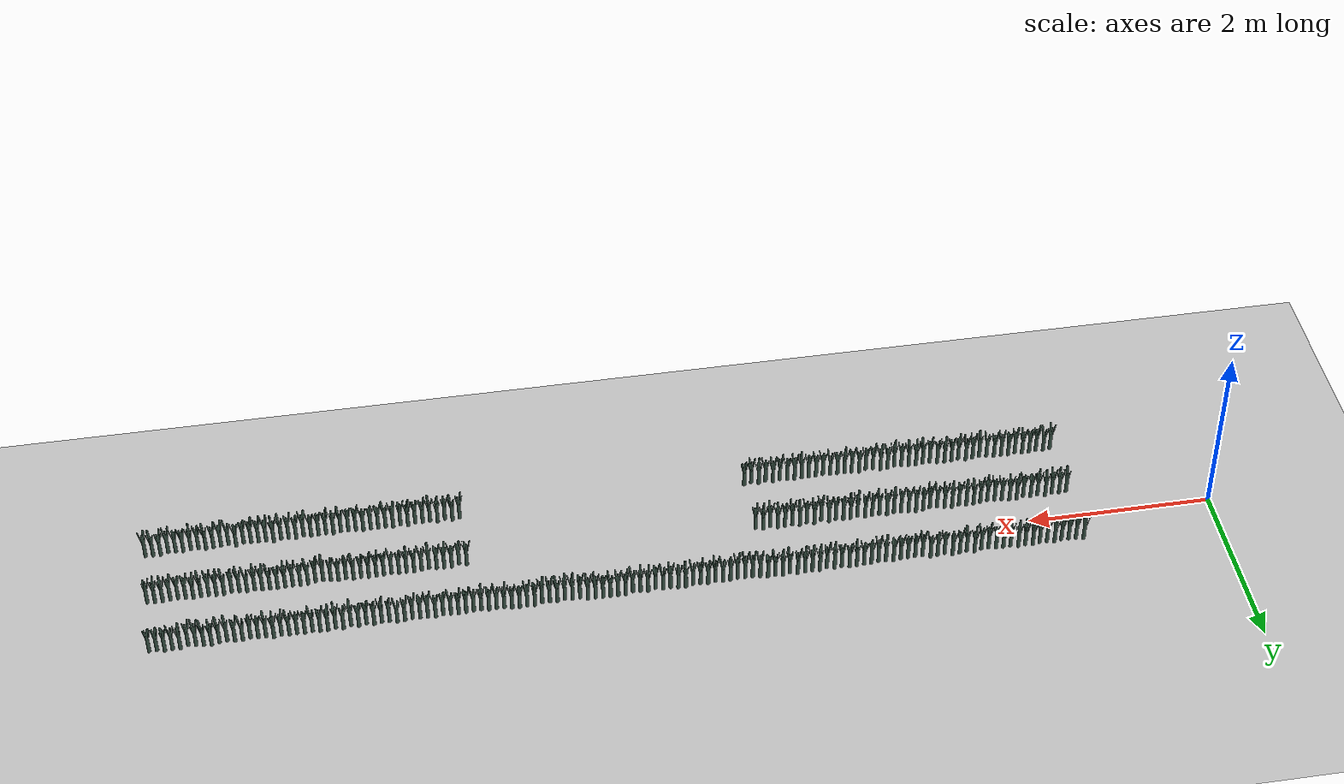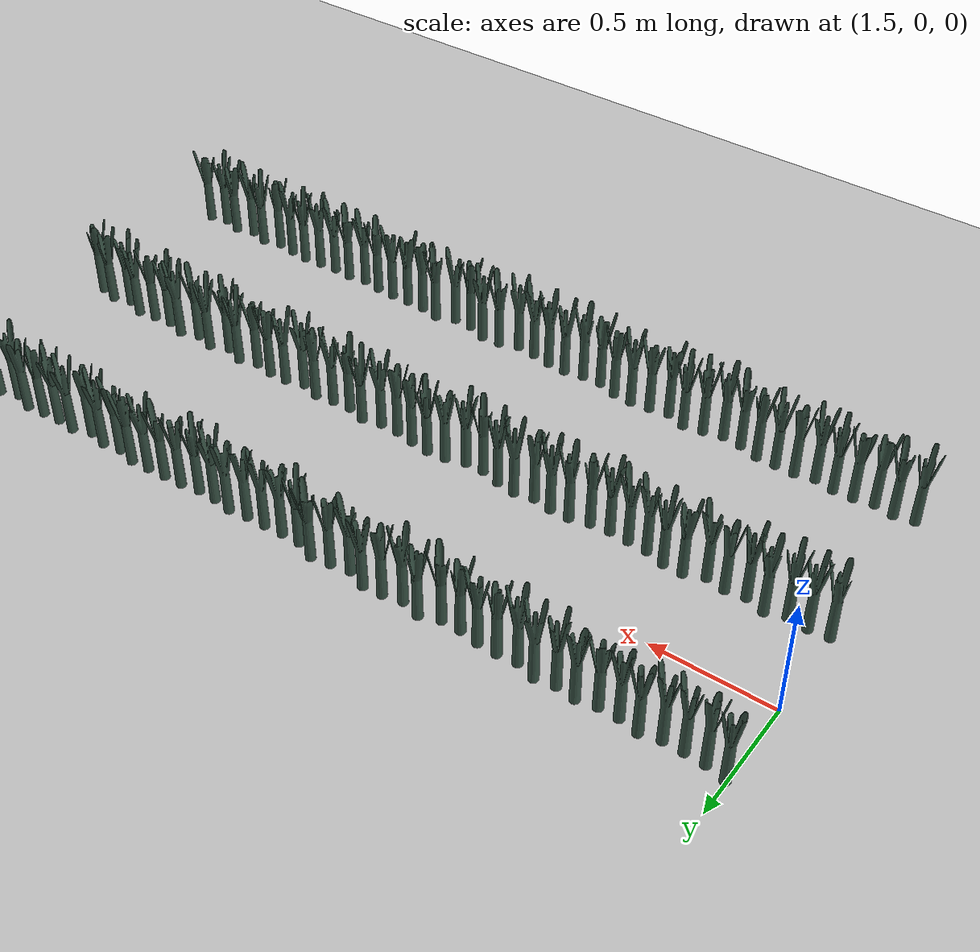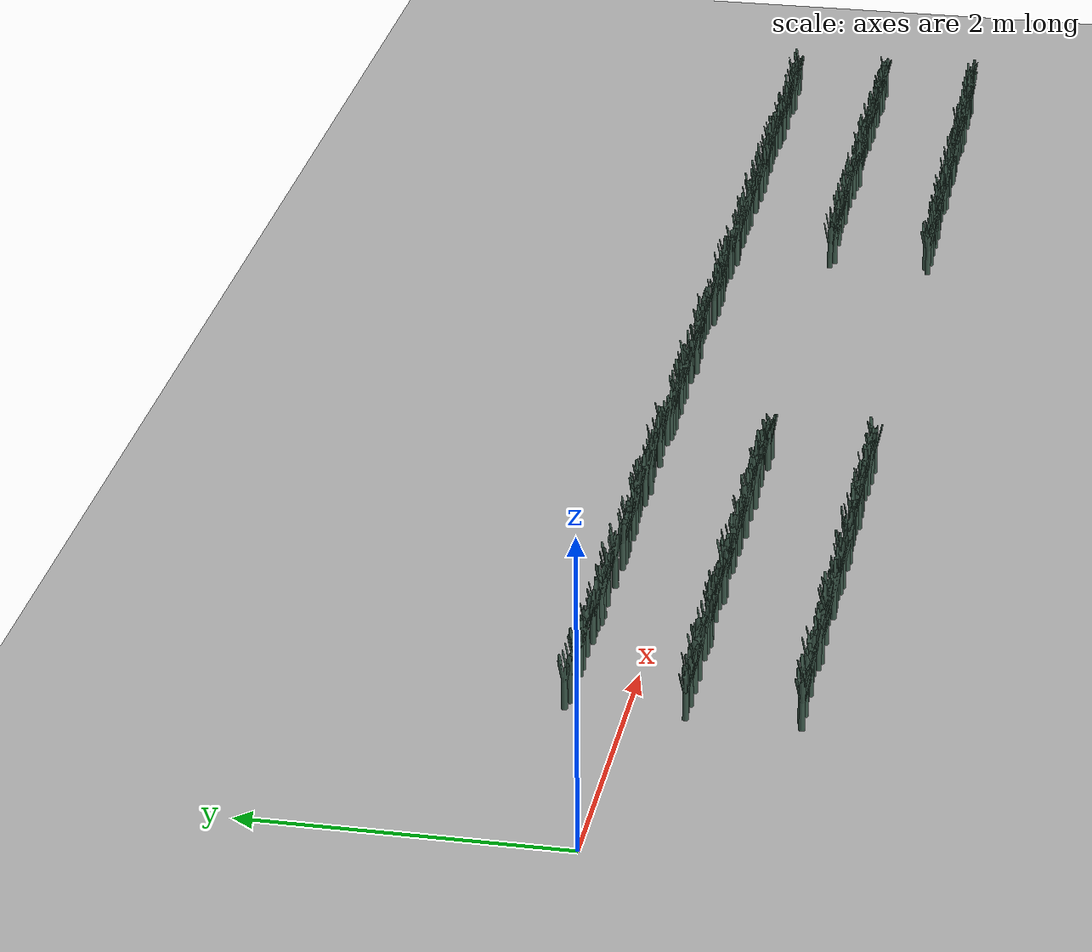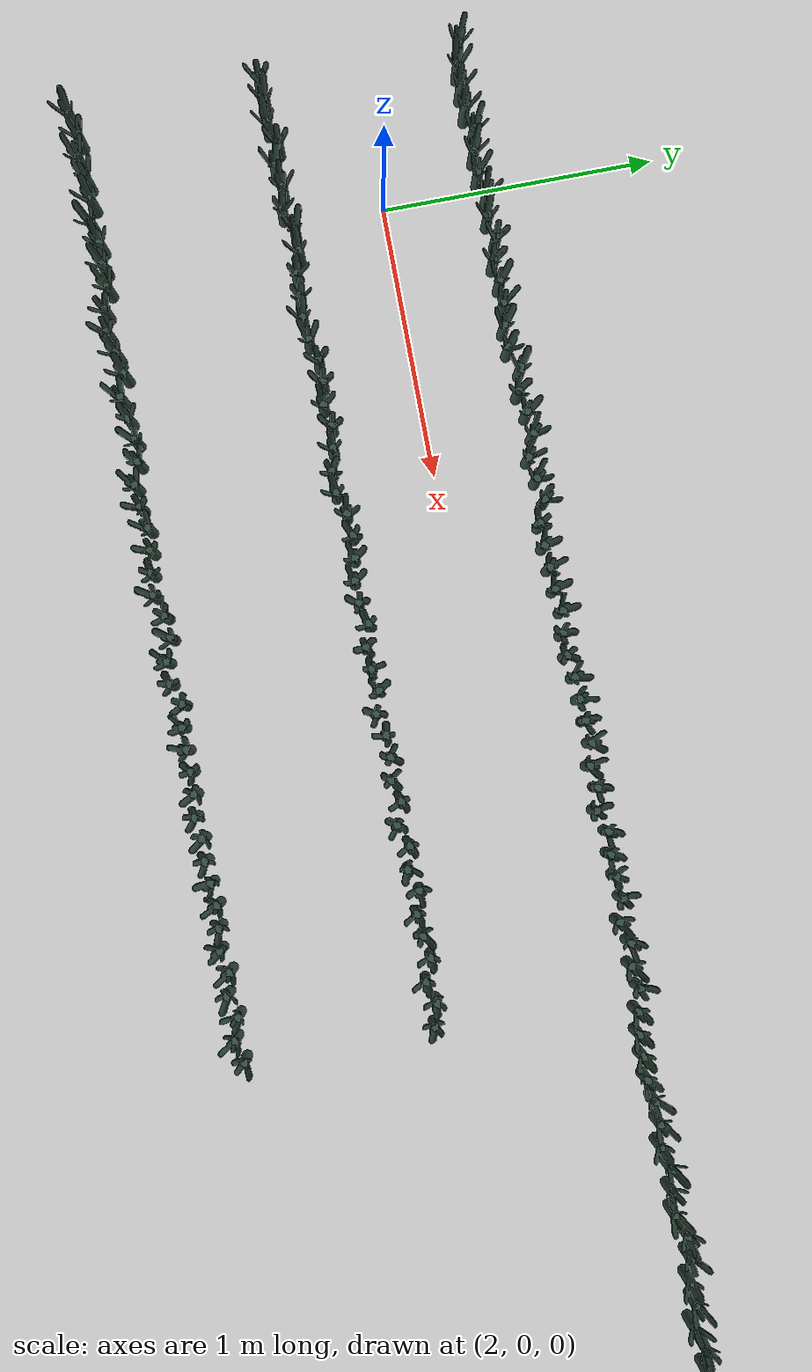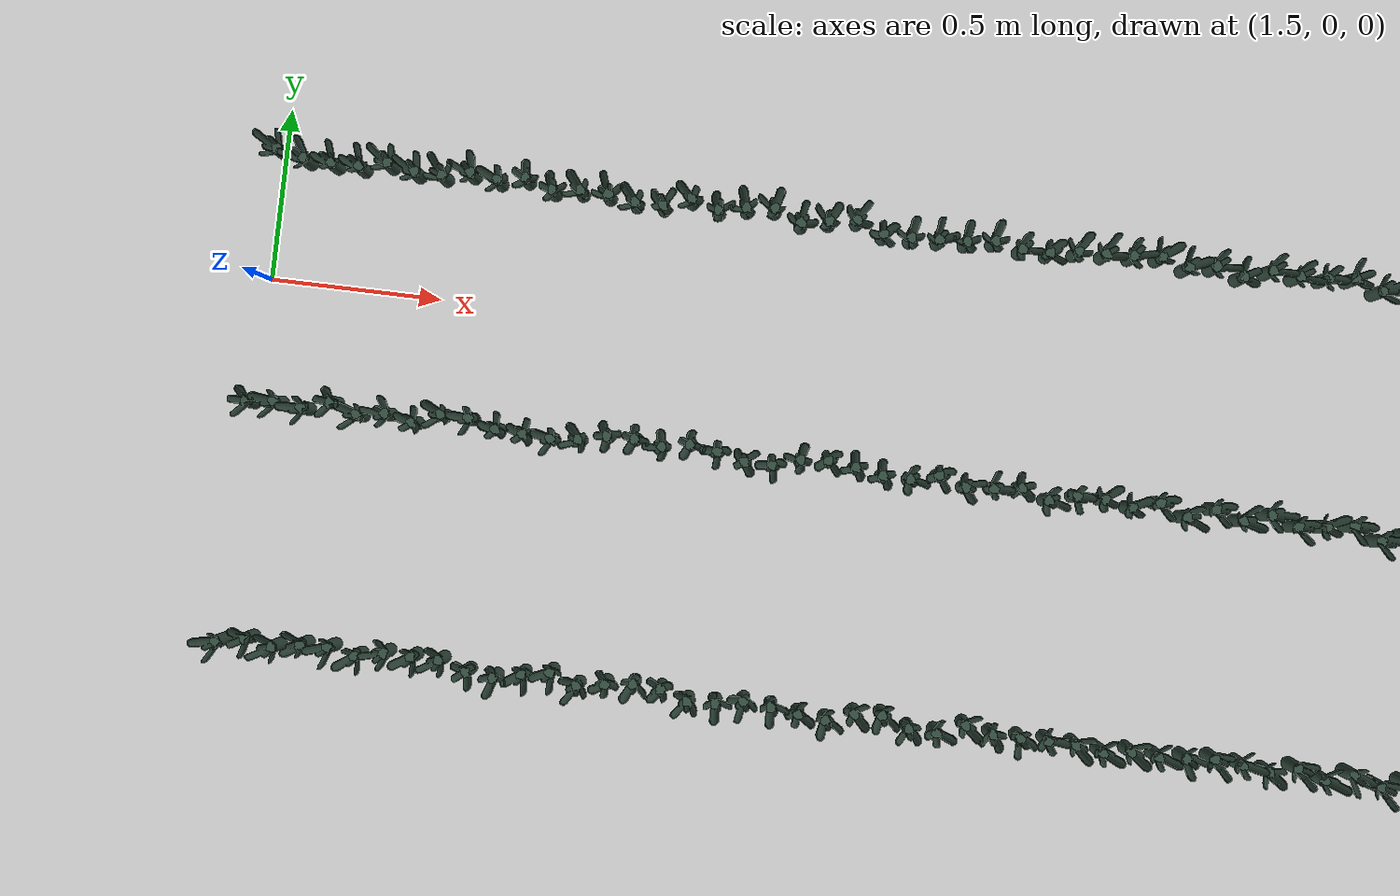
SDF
<sdf version="1.6">
 <world name="default">
  <light name="sun" type="directional">
   <pose>0 0 10 0 -0 0</pose>
   <diffuse>0.5 0.5 0.5 1</diffuse>
   <specular>0.1 0.1 0.1 1</specular>
   <attenuation>
    <range>1000</range>
    <constant>0.9</constant>
    <linear>0.01</linear>
    <quadratic>0.001</quadratic>
   </attenuation>
   <direction>0.9 0.5 -1</direction>
  </light>
  <scene><background>130 200 255 1</background><ambient>130 140 140 1</ambient></scene>
  <include><uri>model://dirt_plane</uri></include>
  <include><uri>model://Leek</uri><pose>1.500000 0.366860 0.15 0 0 151.737642</pose><static>0</static></include>
  <include><uri>model://Leek</uri><pose>1.580000 0.348081 0.15 0 0 -17.271624</pose><static>0</static></include>
  <include><uri>model://Leek</uri><pose>1.660000 0.345086 0.15 0 0 -44.230050</pose><static>0</static></include>
  <include><uri>model://Leek</uri><pose>1.740000 0.345083 0.15 0 0 -44.256999</pose><static>0</static></include>
  <include><uri>model://Leek</uri><pose>1.820000 0.364056 0.15 0 0 126.501568</pose><static>0</static></include>
  <include><uri>model://Leek</uri><pose>1.900000 0.348023 0.15 0 0 -17.794130</pose><static>0</static></include>
  <include><uri>model://Leek</uri><pose>1.980000 0.347952 0.15 0 0 -18.428122</pose><static>0</static></include>
  <include><uri>model://Leek</uri><pose>2.060000 0.364810 0.15 0 0 133.286129</pose><static>0</static></include>
  <include><uri>model://Leek</uri><pose>2.140000 0.353816 0.15 0 0 34.341924</pose><static>0</static></include>
  <include><uri>model://Leek</uri><pose>2.220000 0.368641 0.15 0 0 167.770606</pose><static>0</static></include>
  <include><uri>model://Leek</uri><pose>2.300000 0.344238 0.15 0 0 -51.853843</pose><static>0</static></include>
  <include><uri>model://Leek</uri><pose>2.380000 0.352342 0.15 0 0 21.081935</pose><static>0</static></include>
  <include><uri>model://Leek</uri><pose>2.460000 0.350720 0.15 0 0 6.483171</pose><static>0</static></include>
  <include>
   <uri>model://Leek</uri>
   <pose>2.540000 0.337695 0.15 0 0 -110.748633</pose>
   <static>0</static>
  </include>
  <include>
   <uri>model://Leek</uri>
   <pose>2.620000 0.338037 0.15 0 0 -107.671440</pose>
   <static>0</static>
  </include>
  <include><uri>model://Leek</uri><pose>2.700000 0.367038 0.15 0 0 153.345296</pose><static>0</static></include>
  <include><uri>model://Leek</uri><pose>2.780000 0.344256 0.15 0 0 -51.697083</pose><static>0</static></include>
  <include><uri>model://Leek</uri><pose>2.860000 0.359990 0.15 0 0 89.910733</pose><static>0</static></include>
  <include><uri>model://Leek</uri><pose>2.940000 0.367588 0.15 0 0 158.295861</pose><static>0</static></include>
  <include>
   <uri>model://Leek</uri>
   <pose>3.020000 0.336011 0.15 0 0 -125.904809</pose>
   <static>0</static>
  </include>
  <include><uri>model://Leek</uri><pose>3.100000 0.350109 0.15 0 0 0.977033</pose><static>0</static></include>
  <include><uri>model://Leek</uri><pose>3.180000 0.363888 0.15 0 0 124.992466</pose><static>0</static></include>
  <include>
   <uri>model://Leek</uri>
   <pose>3.260000 0.331543 0.15 0 0 -166.113670</pose>
   <static>0</static>
  </include>
  <include>
   <uri>model://Leek</uri>
   <pose>3.340000 0.331318 0.15 0 0 -168.139193</pose>
   <static>0</static>
  </include>
  <include>
   <uri>model://Leek</uri>
   <pose>3.420000 0.336043 0.15 0 0 -125.608859</pose>
   <static>0</static>
  </include>
  <include><uri>model://Leek</uri><pose>3.500000 0.339018 0.15 0 0 -98.839098</pose><static>0</static></include>
  <include><uri>model://Leek</uri><pose>3.580000 0.350868 0.15 0 0 7.810366</pose><static>0</static></include>
  <include>
   <uri>model://Leek</uri>
   <pose>3.660000 0.337219 0.15 0 0 -115.028678</pose>
   <static>0</static>
  </include>
  <include>
   <uri>model://Leek</uri>
   <pose>3.740000 0.336457 0.15 0 0 -121.889751</pose>
   <static>0</static>
  </include>
  <include><uri>model://Leek</uri><pose>3.820000 0.349434 0.15 0 0 -5.094323</pose><static>0</static></include>
  <include><uri>model://Leek</uri><pose>3.900000 0.352752 0.15 0 0 24.764004</pose><static>0</static></include>
  <include><uri>model://Leek</uri><pose>3.980000 0.357497 0.15 0 0 67.475456</pose><static>0</static></include>
  <include><uri>model://Leek</uri><pose>4.060000 0.363337 0.15 0 0 120.036382</pose><static>0</static></include>
  <include><uri>model://Leek</uri><pose>4.140000 0.343054 0.15 0 0 -62.513270</pose><static>0</static></include>
  <include><uri>model://Leek</uri><pose>4.220000 0.355376 0.15 0 0 48.387599</pose><static>0</static></include>
  <include>
   <uri>model://Leek</uri>
   <pose>4.300000 0.335568 0.15 0 0 -129.885776</pose>
   <static>0</static>
  </include>
  <include><uri>model://Leek</uri><pose>4.380000 0.363048 0.15 0 0 117.430127</pose><static>0</static></include>
  <include><uri>model://Leek</uri><pose>4.460000 0.355353 0.15 0 0 48.174700</pose><static>0</static></include>
  <include><uri>model://Leek</uri><pose>4.540000 0.360074 0.15 0 0 90.667205</pose><static>0</static></include>
  <include><uri>model://Leek</uri><pose>4.620000 0.369073 0.15 0 0 171.652568</pose><static>0</static></include>
  <include><uri>model://Leek</uri><pose>4.700000 0.342183 0.15 0 0 -70.350604</pose><static>0</static></include>
  <include><uri>model://Leek</uri><pose>4.780000 0.367251 0.15 0 0 155.257407</pose><static>0</static></include>
  <include><uri>model://Leek</uri><pose>4.860000 0.354774 0.15 0 0 42.965507</pose><static>0</static></include>
  <include><uri>model://Leek</uri><pose>4.940000 0.368336 0.15 0 0 165.020113</pose><static>0</static></include>
  <include><uri>model://Leek</uri><pose>5.020000 0.346927 0.15 0 0 -27.659769</pose><static>0</static></include>
  <include>
   <uri>model://Leek</uri>
   <pose>5.100000 0.335756 0.15 0 0 -128.198975</pose>
   <static>0</static>
  </include>
  <include>
   <uri>model://Leek</uri>
   <pose>5.180000 0.334334 0.15 0 0 -140.995395</pose>
   <static>0</static>
  </include>
  <include>
   <uri>model://Leek</uri>
   <pose>5.260000 0.332295 0.15 0 0 -159.347187</pose>
   <static>0</static>
  </include>
  <include><uri>model://Leek</uri><pose>5.340000 0.345948 0.15 0 0 -36.469030</pose><static>0</static></include>
  <include><uri>model://Leek</uri><pose>5.420000 0.348522 0.15 0 0 -13.300659</pose><static>0</static></include>
  <include>
   <uri>model://Leek</uri>
   <pose>5.500000 0.335713 0.15 0 0 -128.586408</pose>
   <static>0</static>
  </include>
  <include><uri>model://Leek</uri><pose>5.580000 0.356367 0.15 0 0 57.305866</pose><static>0</static></include>
  <include><uri>model://Leek</uri><pose>5.660000 0.345380 0.15 0 0 -41.583807</pose><static>0</static></include>
  <include>
   <uri>model://Leek</uri>
   <pose>5.740000 0.338747 0.15 0 0 -101.277227</pose>
   <static>0</static>
  </include>
  <include><uri>model://Leek</uri><pose>5.820000 0.369374 0.15 0 0 174.366676</pose><static>0</static></include>
  <include><uri>model://Leek</uri><pose>5.900000 0.364808 0.15 0 0 133.273447</pose><static>0</static></include>
  <include><uri>model://Leek</uri><pose>5.980000 0.346889 0.15 0 0 -27.997389</pose><static>0</static></include>
  <include><uri>model://Leek</uri><pose>6.060000 0.352007 0.15 0 0 18.065696</pose><static>0</static></include>
  <include>
   <uri>model://Leek</uri>
   <pose>6.140000 0.331332 0.15 0 0 -168.009673</pose>
   <static>0</static>
  </include>
  <include><uri>model://Leek</uri><pose>6.220000 0.358678 0.15 0 0 78.104845</pose><static>0</static></include>
  <include><uri>model://Leek</uri><pose>6.300000 0.346835 0.15 0 0 -28.486344</pose><static>0</static></include>
  <include><uri>model://Leek</uri><pose>6.380000 0.341528 0.15 0 0 -76.243877</pose><static>0</static></include>
  <include><uri>model://Leek</uri><pose>6.460000 0.368422 0.15 0 0 165.799376</pose><static>0</static></include>
  <include><uri>model://Leek</uri><pose>6.540000 0.369949 0.15 0 0 179.544901</pose><static>0</static></include>
  <include><uri>model://Leek</uri><pose>6.620000 0.369442 0.15 0 0 174.977318</pose><static>0</static></include>
  <include><uri>model://Leek</uri><pose>6.700000 0.368854 0.15 0 0 169.688577</pose><static>0</static></include>
  <include><uri>model://Leek</uri><pose>6.780000 0.365028 0.15 0 0 135.256165</pose><static>0</static></include>
  <include><uri>model://Leek</uri><pose>6.860000 0.367838 0.15 0 0 160.544832</pose><static>0</static></include>
  <include>
   <uri>model://Leek</uri>
   <pose>6.940000 0.336237 0.15 0 0 -123.869872</pose>
   <static>0</static>
  </include>
  <include><uri>model://Leek</uri><pose>7.020000 0.340714 0.15 0 0 -83.578359</pose><static>0</static></include>
  <include>
   <uri>model://Leek</uri>
   <pose>7.100000 0.331654 0.15 0 0 -165.110698</pose>
   <static>0</static>
  </include>
  <include><uri>model://Leek</uri><pose>7.180000 0.349183 0.15 0 0 -7.354023</pose><static>0</static></include>
  <include><uri>model://Leek</uri><pose>7.260000 0.340642 0.15 0 0 -84.224463</pose><static>0</static></include>
  <include>
   <uri>model://Leek</uri>
   <pose>7.340000 0.337914 0.15 0 0 -108.770737</pose>
   <static>0</static>
  </include>
  <include><uri>model://Leek</uri><pose>7.420000 0.367642 0.15 0 0 158.780539</pose><static>0</static></include>
  <include><uri>model://Leek</uri><pose>7.500000 0.358101 0.15 0 0 72.911843</pose><static>0</static></include>
  <include><uri>model://Leek</uri><pose>7.580000 0.366059 0.15 0 0 144.530559</pose><static>0</static></include>
  <include><uri>model://Leek</uri><pose>7.660000 0.363993 0.15 0 0 125.935448</pose><static>0</static></include>
  <include><uri>model://Leek</uri><pose>7.740000 0.345413 0.15 0 0 -41.282358</pose><static>0</static></include>
  <include><uri>model://Leek</uri><pose>7.820000 0.344337 0.15 0 0 -50.966517</pose><static>0</static></include>
  <include><uri>model://Leek</uri><pose>7.900000 0.354400 0.15 0 0 39.598221</pose><static>0</static></include>
  <include>
   <uri>model://Leek</uri>
   <pose>7.980000 0.332874 0.15 0 0 -154.138085</pose>
   <static>0</static>
  </include>
  <include>
   <uri>model://Leek</uri>
   <pose>8.060000 0.338765 0.15 0 0 -101.110663</pose>
   <static>0</static>
  </include>
  <include><uri>model://Leek</uri><pose>8.140000 0.345330 0.15 0 0 -42.033202</pose><static>0</static></include>
  <include><uri>model://Leek</uri><pose>8.220000 0.353775 0.15 0 0 33.978584</pose><static>0</static></include>
  <include><uri>model://Leek</uri><pose>8.300000 0.343638 0.15 0 0 -57.261448</pose><static>0</static></include>
  <include><uri>model://Leek</uri><pose>8.380000 0.339618 0.15 0 0 -93.440157</pose><static>0</static></include>
  <include><uri>model://Leek</uri><pose>8.460000 0.357716 0.15 0 0 69.440624</pose><static>0</static></include>
  <include><uri>model://Leek</uri><pose>8.540000 0.344845 0.15 0 0 -46.392160</pose><static>0</static></include>
  <include><uri>model://Leek</uri><pose>8.620000 0.344611 0.15 0 0 -48.501978</pose><static>0</static></include>
  <include><uri>model://Leek</uri><pose>8.700000 0.339077 0.15 0 0 -98.311410</pose><static>0</static></include>
  <include><uri>model://Leek</uri><pose>8.780000 0.357928 0.15 0 0 71.351810</pose><static>0</static></include>
  <include><uri>model://Leek</uri><pose>8.860000 0.367388 0.15 0 0 156.489300</pose><static>0</static></include>
  <include><uri>model://Leek</uri><pose>8.940000 0.340344 0.15 0 0 -86.903618</pose><static>0</static></include>
  <include><uri>model://Leek</uri><pose>9.020000 0.341405 0.15 0 0 -77.358572</pose><static>0</static></include>
  <include><uri>model://Leek</uri><pose>9.100000 0.355704 0.15 0 0 51.340076</pose><static>0</static></include>
  <include>
   <uri>model://Leek</uri>
   <pose>9.180000 0.332633 0.15 0 0 -156.298895</pose>
   <static>0</static>
  </include>
  <include><uri>model://Leek</uri><pose>9.260000 0.354980 0.15 0 0 44.819243</pose><static>0</static></include>
  <include>
   <uri>model://Leek</uri>
   <pose>9.340000 0.332387 0.15 0 0 -158.520985</pose>
   <static>0</static>
  </include>
  <include><uri>model://Leek</uri><pose>9.420000 0.363371 0.15 0 0 120.341555</pose><static>0</static></include>
  <include><uri>model://Leek</uri><pose>9.500000 0.341292 0.15 0 0 -78.371844</pose><static>0</static></include>
  <include><uri>model://Leek</uri><pose>9.580000 0.360265 0.15 0 0 92.386500</pose><static>0</static></include>
  <include><uri>model://Leek</uri><pose>9.660000 0.359316 0.15 0 0 83.848009</pose><static>0</static></include>
  <include><uri>model://Leek</uri><pose>9.740000 0.346426 0.15 0 0 -32.162506</pose><static>0</static></include>
  <include><uri>model://Leek</uri><pose>9.820000 0.359800 0.15 0 0 88.197189</pose><static>0</static></include>
  <include><uri>model://Leek</uri><pose>9.900000 0.354190 0.15 0 0 37.705734</pose><static>0</static></include>
  <include><uri>model://Leek</uri><pose>9.980000 0.358988 0.15 0 0 80.893680</pose><static>0</static></include>
  <include><uri>model://Leek</uri><pose>10.060000 0.350299 0.15 0 0 2.692798</pose><static>0</static></include>
  <include>
   <uri>model://Leek</uri>
   <pose>10.140000 0.369893 0.15 0 0 179.036834</pose>
   <static>0</static>
  </include>
  <include>
   <uri>model://Leek</uri>
   <pose>10.220000 0.343582 0.15 0 0 -57.760885</pose>
   <static>0</static>
  </include>
  <include>
   <uri>model://Leek</uri>
   <pose>10.300000 0.345125 0.15 0 0 -43.875474</pose>
   <static>0</static>
  </include>
  <include>
   <uri>model://Leek</uri>
   <pose>10.380000 0.334114 0.15 0 0 -142.972622</pose>
   <static>0</static>
  </include>
  <include><uri>model://Leek</uri><pose>10.460000 0.353426 0.15 0 0 30.831188</pose><static>0</static></include>
  <include><uri>model://Leek</uri><pose>10.540000 0.354443 0.15 0 0 39.990473</pose><static>0</static></include>
  <include>
   <uri>model://Leek</uri>
   <pose>10.620000 0.337295 0.15 0 0 -114.345129</pose>
   <static>0</static>
  </include>
  <include><uri>model://Leek</uri><pose>10.700000 0.349178 0.15 0 0 -7.397134</pose><static>0</static></include>
  <include>
   <uri>model://Leek</uri>
   <pose>10.780000 0.367831 0.15 0 0 160.482044</pose>
   <static>0</static>
  </include>
  <include><uri>model://Leek</uri><pose>10.860000 0.361071 0.15 0 0 99.642166</pose><static>0</static></include>
  <include>
   <uri>model://Leek</uri>
   <pose>10.940000 0.341341 0.15 0 0 -77.931826</pose>
   <static>0</static>
  </include>
  <include>
   <uri>model://Leek</uri>
   <pose>11.020000 0.331420 0.15 0 0 -167.217459</pose>
   <static>0</static>
  </include>
  <include>
   <uri>model://Leek</uri>
   <pose>11.100000 0.369360 0.15 0 0 174.241016</pose>
   <static>0</static>
  </include>
  <include>
   <uri>model://Leek</uri>
   <pose>11.180000 0.363223 0.15 0 0 119.010629</pose>
   <static>0</static>
  </include>
  <include>
   <uri>model://Leek</uri>
   <pose>11.260000 0.369751 0.15 0 0 177.755497</pose>
   <static>0</static>
  </include>
  <include><uri>model://Leek</uri><pose>11.340000 0.352202 0.15 0 0 19.818176</pose><static>0</static></include>
  <include><uri>model://Leek</uri><pose>11.420000 0.352888 0.15 0 0 25.994413</pose><static>0</static></include>
  <include>
   <uri>model://Leek</uri>
   <pose>1.500000 -0.362743 0.15 0 0 -114.685333</pose>
   <static>0</static>
  </include>
  <include>
   <uri>model://Leek</uri>
   <pose>1.580000 -0.355255 0.15 0 0 -47.294471</pose>
   <static>0</static>
  </include>
  <include>
   <uri>model://Leek</uri>
   <pose>1.660000 -0.363604 0.15 0 0 -122.433005</pose>
   <static>0</static>
  </include>
  <include>
   <uri>model://Leek</uri>
   <pose>1.740000 -0.337623 0.15 0 0 111.396633</pose>
   <static>0</static>
  </include>
  <include>
   <uri>model://Leek</uri>
   <pose>1.820000 -0.363666 0.15 0 0 -122.996905</pose>
   <static>0</static>
  </include>
  <include>
   <uri>model://Leek</uri>
   <pose>1.900000 -0.351232 0.15 0 0 -11.089569</pose>
   <static>0</static>
  </include>
  <include>
   <uri>model://Leek</uri>
   <pose>1.980000 -0.366814 0.15 0 0 -151.322602</pose>
   <static>0</static>
  </include>
  <include>
   <uri>model://Leek</uri>
   <pose>2.060000 -0.335063 0.15 0 0 134.435576</pose>
   <static>0</static>
  </include>
  <include>
   <uri>model://Leek</uri>
   <pose>2.140000 -0.335691 0.15 0 0 128.777577</pose>
   <static>0</static>
  </include>
  <include>
   <uri>model://Leek</uri>
   <pose>2.220000 -0.357719 0.15 0 0 -69.471807</pose>
   <static>0</static>
  </include>
  <include>
   <uri>model://Leek</uri>
   <pose>2.300000 -0.361931 0.15 0 0 -107.379122</pose>
   <static>0</static>
  </include>
  <include>
   <uri>model://Leek</uri>
   <pose>2.380000 -0.365736 0.15 0 0 -141.624992</pose>
   <static>0</static>
  </include>
  <include>
   <uri>model://Leek</uri>
   <pose>2.460000 -0.358848 0.15 0 0 -79.633446</pose>
   <static>0</static>
  </include>
  <include>
   <uri>model://Leek</uri>
   <pose>2.540000 -0.338291 0.15 0 0 105.385114</pose>
   <static>0</static>
  </include>
  <include>
   <uri>model://Leek</uri>
   <pose>2.620000 -0.336936 0.15 0 0 117.572283</pose>
   <static>0</static>
  </include>
  <include><uri>model://Leek</uri><pose>2.700000 -0.350518 0.15 0 0 -4.662376</pose><static>0</static></include>
  <include>
   <uri>model://Leek</uri>
   <pose>2.780000 -0.333453 0.15 0 0 148.921029</pose>
   <static>0</static>
  </include>
  <include><uri>model://Leek</uri><pose>2.860000 -0.344764 0.15 0 0 47.126781</pose><static>0</static></include>
  <include>
   <uri>model://Leek</uri>
   <pose>2.940000 -0.364068 0.15 0 0 -126.616009</pose>
   <static>0</static>
  </include>
  <include>
   <uri>model://Leek</uri>
   <pose>3.020000 -0.364297 0.15 0 0 -128.676261</pose>
   <static>0</static>
  </include>
  <include><uri>model://Leek</uri><pose>3.100000 -0.339372 0.15 0 0 95.651679</pose><static>0</static></include>
  <include>
   <uri>model://Leek</uri>
   <pose>3.180000 -0.332131 0.15 0 0 160.824005</pose>
   <static>0</static>
  </include>
  <include><uri>model://Leek</uri><pose>3.260000 -0.341415 0.15 0 0 77.266854</pose><static>0</static></include>
  <include>
   <uri>model://Leek</uri>
   <pose>3.340000 -0.356076 0.15 0 0 -54.686237</pose>
   <static>0</static>
  </include>
  <include>
   <uri>model://Leek</uri>
   <pose>3.420000 -0.356494 0.15 0 0 -58.449199</pose>
   <static>0</static>
  </include>
  <include>
   <uri>model://Leek</uri>
   <pose>3.500000 -0.336346 0.15 0 0 122.888546</pose>
   <static>0</static>
  </include>
  <include>
   <uri>model://Leek</uri>
   <pose>3.580000 -0.359912 0.15 0 0 -89.206994</pose>
   <static>0</static>
  </include>
  <include>
   <uri>model://Leek</uri>
   <pose>3.660000 -0.354888 0.15 0 0 -43.993693</pose>
   <static>0</static>
  </include>
  <include><uri>model://Leek</uri><pose>3.740000 -0.343488 0.15 0 0 58.603961</pose><static>0</static></include>
  <include>
   <uri>model://Leek</uri>
   <pose>3.820000 -0.368374 0.15 0 0 -165.368591</pose>
   <static>0</static>
  </include>
  <include><uri>model://Leek</uri><pose>3.900000 -0.347573 0.15 0 0 21.842639</pose><static>0</static></include>
  <include><uri>model://Leek</uri><pose>3.980000 -0.346402 0.15 0 0 32.381603</pose><static>0</static></include>
  <include>
   <uri>model://Leek</uri>
   <pose>4.060000 -0.360399 0.15 0 0 -93.593467</pose>
   <static>0</static>
  </include>
  <include>
   <uri>model://Leek</uri>
   <pose>4.140000 -0.337749 0.15 0 0 110.259974</pose>
   <static>0</static>
  </include>
  <include>
   <uri>model://Leek</uri>
   <pose>4.220000 -0.368410 0.15 0 0 -165.685668</pose>
   <static>0</static>
  </include>
  <include>
   <uri>model://Leek</uri>
   <pose>4.300000 -0.337051 0.15 0 0 116.536968</pose>
   <static>0</static>
  </include>
  <include>
   <uri>model://Leek</uri>
   <pose>4.380000 -0.359823 0.15 0 0 -88.408312</pose>
   <static>0</static>
  </include>
  <include>
   <uri>model://Leek</uri>
   <pose>4.460000 -0.333420 0.15 0 0 149.221941</pose>
   <static>0</static>
  </include>
  <include>
   <uri>model://Leek</uri>
   <pose>4.540000 -0.357304 0.15 0 0 -65.738738</pose>
   <static>0</static>
  </include>
  <include><uri>model://Leek</uri><pose>4.620000 -0.349909 0.15 0 0 0.815392</pose><static>0</static></include>
  <include>
   <uri>model://Leek</uri>
   <pose>4.700000 -0.337788 0.15 0 0 109.909283</pose>
   <static>0</static>
  </include>
  <include>
   <uri>model://Leek</uri>
   <pose>4.780000 -0.369896 0.15 0 0 -179.065457</pose>
   <static>0</static>
  </include>
  <include><uri>model://Leek</uri><pose>4.860000 -0.346200 0.15 0 0 34.199408</pose><static>0</static></include>
  <include>
   <uri>model://Leek</uri>
   <pose>4.940000 -0.368577 0.15 0 0 -167.194638</pose>
   <static>0</static>
  </include>
  <include><uri>model://Leek</uri><pose>8.060000 -0.344220 0.15 0 0 52.016438</pose><static>0</static></include>
  <include>
   <uri>model://Leek</uri>
   <pose>8.140000 -0.369431 0.15 0 0 -174.881421</pose>
   <static>0</static>
  </include>
  <include>
   <uri>model://Leek</uri>
   <pose>8.220000 -0.336758 0.15 0 0 119.177691</pose>
   <static>0</static>
  </include>
  <include><uri>model://Leek</uri><pose>8.300000 -0.339228 0.15 0 0 96.952141</pose><static>0</static></include>
  <include><uri>model://Leek</uri><pose>8.380000 -0.340008 0.15 0 0 89.927639</pose><static>0</static></include>
  <include>
   <uri>model://Leek</uri>
   <pose>8.460000 -0.355043 0.15 0 0 -45.388257</pose>
   <static>0</static>
  </include>
  <include><uri>model://Leek</uri><pose>8.540000 -0.343079 0.15 0 0 62.286426</pose><static>0</static></include>
  <include>
   <uri>model://Leek</uri>
   <pose>8.620000 -0.334572 0.15 0 0 138.852934</pose>
   <static>0</static>
  </include>
  <include><uri>model://Leek</uri><pose>8.700000 -0.342688 0.15 0 0 65.810077</pose><static>0</static></include>
  <include>
   <uri>model://Leek</uri>
   <pose>8.780000 -0.336628 0.15 0 0 120.350402</pose>
   <static>0</static>
  </include>
  <include>
   <uri>model://Leek</uri>
   <pose>8.860000 -0.352166 0.15 0 0 -19.492217</pose>
   <static>0</static>
  </include>
  <include><uri>model://Leek</uri><pose>8.940000 -0.342253 0.15 0 0 69.722733</pose><static>0</static></include>
  <include>
   <uri>model://Leek</uri>
   <pose>9.020000 -0.337853 0.15 0 0 109.326174</pose>
   <static>0</static>
  </include>
  <include>
   <uri>model://Leek</uri>
   <pose>9.100000 -0.330875 0.15 0 0 172.127924</pose>
   <static>0</static>
  </include>
  <include><uri>model://Leek</uri><pose>9.180000 -0.343624 0.15 0 0 57.387090</pose><static>0</static></include>
  <include>
   <uri>model://Leek</uri>
   <pose>9.260000 -0.334069 0.15 0 0 143.376402</pose>
   <static>0</static>
  </include>
  <include>
   <uri>model://Leek</uri>
   <pose>9.340000 -0.351915 0.15 0 0 -17.236049</pose>
   <static>0</static>
  </include>
  <include>
   <uri>model://Leek</uri>
   <pose>9.420000 -0.338832 0.15 0 0 100.512856</pose>
   <static>0</static>
  </include>
  <include>
   <uri>model://Leek</uri>
   <pose>9.500000 -0.351988 0.15 0 0 -17.888106</pose>
   <static>0</static>
  </include>
  <include>
   <uri>model://Leek</uri>
   <pose>9.580000 -0.366915 0.15 0 0 -152.235533</pose>
   <static>0</static>
  </include>
  <include>
   <uri>model://Leek</uri>
   <pose>9.660000 -0.360191 0.15 0 0 -91.717054</pose>
   <static>0</static>
  </include>
  <include><uri>model://Leek</uri><pose>9.740000 -0.338937 0.15 0 0 99.567432</pose><static>0</static></include>
  <include>
   <uri>model://Leek</uri>
   <pose>9.820000 -0.337408 0.15 0 0 113.330827</pose>
   <static>0</static>
  </include>
  <include><uri>model://Leek</uri><pose>9.900000 -0.341894 0.15 0 0 72.949869</pose><static>0</static></include>
  <include><uri>model://Leek</uri><pose>9.980000 -0.339175 0.15 0 0 97.429370</pose><static>0</static></include>
  <include>
   <uri>model://Leek</uri>
   <pose>10.060000 -0.331069 0.15 0 0 170.378378</pose>
   <static>0</static>
  </include>
  <include>
   <uri>model://Leek</uri>
   <pose>10.140000 -0.334028 0.15 0 0 143.746498</pose>
   <static>0</static>
  </include>
  <include>
   <uri>model://Leek</uri>
   <pose>10.220000 -0.335559 0.15 0 0 129.969029</pose>
   <static>0</static>
  </include>
  <include><uri>model://Leek</uri><pose>10.300000 -0.349650 0.15 0 0 3.147278</pose><static>0</static></include>
  <include>
   <uri>model://Leek</uri>
   <pose>10.380000 -0.335401 0.15 0 0 131.392682</pose>
   <static>0</static>
  </include>
  <include><uri>model://Leek</uri><pose>10.460000 -0.349411 0.15 0 0 5.302386</pose><static>0</static></include>
  <include>
   <uri>model://Leek</uri>
   <pose>10.540000 -0.356149 0.15 0 0 -55.344566</pose>
   <static>0</static>
  </include>
  <include>
   <uri>model://Leek</uri>
   <pose>10.620000 -0.334067 0.15 0 0 143.396150</pose>
   <static>0</static>
  </include>
  <include>
   <uri>model://Leek</uri>
   <pose>10.700000 -0.334852 0.15 0 0 136.334367</pose>
   <static>0</static>
  </include>
  <include>
   <uri>model://Leek</uri>
   <pose>10.780000 -0.348877 0.15 0 0 10.104174</pose>
   <static>0</static>
  </include>
  <include>
   <uri>model://Leek</uri>
   <pose>10.860000 -0.345935 0.15 0 0 36.584897</pose>
   <static>0</static>
  </include>
  <include>
   <uri>model://Leek</uri>
   <pose>10.940000 -0.333631 0.15 0 0 147.317073</pose>
   <static>0</static>
  </include>
  <include>
   <uri>model://Leek</uri>
   <pose>11.020000 -0.346266 0.15 0 0 33.605988</pose>
   <static>0</static>
  </include>
  <include>
   <uri>model://Leek</uri>
   <pose>11.100000 -0.356215 0.15 0 0 -55.937890</pose>
   <static>0</static>
  </include>
  <include>
   <uri>model://Leek</uri>
   <pose>11.180000 -0.346045 0.15 0 0 35.598693</pose>
   <static>0</static>
  </include>
  <include>
   <uri>model://Leek</uri>
   <pose>11.260000 -0.341259 0.15 0 0 78.670722</pose>
   <static>0</static>
  </include>
  <include>
   <uri>model://Leek</uri>
   <pose>11.340000 -0.339900 0.15 0 0 90.899474</pose>
   <static>0</static>
  </include>
  <include>
   <uri>model://Leek</uri>
   <pose>11.420000 -0.345609 0.15 0 0 39.515862</pose>
   <static>0</static>
  </include>
  <include>
   <uri>model://Leek</uri>
   <pose>1.500000 -1.057331 0.15 0 0 -65.981584</pose>
   <static>0</static>
  </include>
  <include><uri>model://Leek</uri><pose>1.580000 -1.040339 0.15 0 0 86.948284</pose><static>0</static></include>
  <include>
   <uri>model://Leek</uri>
   <pose>1.660000 -1.053955 0.15 0 0 -35.597971</pose>
   <static>0</static>
  </include>
  <include>
   <uri>model://Leek</uri>
   <pose>1.740000 -1.038071 0.15 0 0 107.363554</pose>
   <static>0</static>
  </include>
  <include>
   <uri>model://Leek</uri>
   <pose>1.820000 -1.035674 0.15 0 0 128.933409</pose>
   <static>0</static>
  </include>
  <include><uri>model://Leek</uri><pose>1.900000 -1.050969 0.15 0 0 -8.722270</pose><static>0</static></include>
  <include>
   <uri>model://Leek</uri>
   <pose>1.980000 -1.033065 0.15 0 0 152.417186</pose>
   <static>0</static>
  </include>
  <include>
   <uri>model://Leek</uri>
   <pose>2.060000 -1.034234 0.15 0 0 141.892768</pose>
   <static>0</static>
  </include>
  <include>
   <uri>model://Leek</uri>
   <pose>2.140000 -1.034415 0.15 0 0 140.263429</pose>
   <static>0</static>
  </include>
  <include>
   <uri>model://Leek</uri>
   <pose>2.220000 -1.057082 0.15 0 0 -63.735309</pose>
   <static>0</static>
  </include>
  <include>
   <uri>model://Leek</uri>
   <pose>2.300000 -1.064838 0.15 0 0 -133.543777</pose>
   <static>0</static>
  </include>
  <include><uri>model://Leek</uri><pose>2.380000 -1.046109 0.15 0 0 35.022687</pose><static>0</static></include>
  <include>
   <uri>model://Leek</uri>
   <pose>2.460000 -1.030777 0.15 0 0 173.011037</pose>
   <static>0</static>
  </include>
  <include>
   <uri>model://Leek</uri>
   <pose>2.540000 -1.058792 0.15 0 0 -79.131284</pose>
   <static>0</static>
  </include>
  <include><uri>model://Leek</uri><pose>2.620000 -1.044388 0.15 0 0 50.510480</pose><static>0</static></include>
  <include>
   <uri>model://Leek</uri>
   <pose>2.700000 -1.034167 0.15 0 0 142.498077</pose>
   <static>0</static>
  </include>
  <include><uri>model://Leek</uri><pose>2.780000 -1.039452 0.15 0 0 94.935319</pose><static>0</static></include>
  <include>
   <uri>model://Leek</uri>
   <pose>2.860000 -1.064404 0.15 0 0 -129.633026</pose>
   <static>0</static>
  </include>
  <include>
   <uri>model://Leek</uri>
   <pose>2.940000 -1.060633 0.15 0 0 -95.696783</pose>
   <static>0</static>
  </include>
  <include><uri>model://Leek</uri><pose>3.020000 -1.045497 0.15 0 0 40.525041</pose><static>0</static></include>
  <include><uri>model://Leek</uri><pose>3.100000 -1.050871 0.15 0 0 -7.836141</pose><static>0</static></include>
  <include>
   <uri>model://Leek</uri>
   <pose>3.180000 -1.063296 0.15 0 0 -119.667329</pose>
   <static>0</static>
  </include>
  <include>
   <uri>model://Leek</uri>
   <pose>3.260000 -1.069764 0.15 0 0 -177.872539</pose>
   <static>0</static>
  </include>
  <include><uri>model://Leek</uri><pose>3.340000 -1.043094 0.15 0 0 62.158130</pose><static>0</static></include>
  <include>
   <uri>model://Leek</uri>
   <pose>3.420000 -1.036973 0.15 0 0 117.241394</pose>
   <static>0</static>
  </include>
  <include>
   <uri>model://Leek</uri>
   <pose>3.500000 -1.066508 0.15 0 0 -148.576117</pose>
   <static>0</static>
  </include>
  <include>
   <uri>model://Leek</uri>
   <pose>3.580000 -1.068861 0.15 0 0 -169.748783</pose>
   <static>0</static>
  </include>
  <include>
   <uri>model://Leek</uri>
   <pose>3.660000 -1.037507 0.15 0 0 112.439935</pose>
   <static>0</static>
  </include>
  <include>
   <uri>model://Leek</uri>
   <pose>3.740000 -1.053978 0.15 0 0 -35.803811</pose>
   <static>0</static>
  </include>
  <include>
   <uri>model://Leek</uri>
   <pose>3.820000 -1.054586 0.15 0 0 -41.272047</pose>
   <static>0</static>
  </include>
  <include>
   <uri>model://Leek</uri>
   <pose>3.900000 -1.052765 0.15 0 0 -24.881428</pose>
   <static>0</static>
  </include>
  <include>
   <uri>model://Leek</uri>
   <pose>3.980000 -1.054984 0.15 0 0 -44.852354</pose>
   <static>0</static>
  </include>
  <include>
   <uri>model://Leek</uri>
   <pose>4.060000 -1.067488 0.15 0 0 -157.390964</pose>
   <static>0</static>
  </include>
  <include>
   <uri>model://Leek</uri>
   <pose>4.140000 -1.054965 0.15 0 0 -44.688819</pose>
   <static>0</static>
  </include>
  <include>
   <uri>model://Leek</uri>
   <pose>4.220000 -1.059791 0.15 0 0 -88.118930</pose>
   <static>0</static>
  </include>
  <include>
   <uri>model://Leek</uri>
   <pose>4.300000 -1.054370 0.15 0 0 -39.326024</pose>
   <static>0</static>
  </include>
  <include><uri>model://Leek</uri><pose>4.380000 -1.046814 0.15 0 0 28.676494</pose><static>0</static></include>
  <include>
   <uri>model://Leek</uri>
   <pose>4.460000 -1.054187 0.15 0 0 -37.683182</pose>
   <static>0</static>
  </include>
  <include>
   <uri>model://Leek</uri>
   <pose>4.540000 -1.065815 0.15 0 0 -142.334032</pose>
   <static>0</static>
  </include>
  <include><uri>model://Leek</uri><pose>4.620000 -1.044716 0.15 0 0 47.554940</pose><static>0</static></include>
  <include>
   <uri>model://Leek</uri>
   <pose>4.700000 -1.068880 0.15 0 0 -169.919902</pose>
   <static>0</static>
  </include>
  <include><uri>model://Leek</uri><pose>4.780000 -1.044803 0.15 0 0 46.768642</pose><static>0</static></include>
  <include>
   <uri>model://Leek</uri>
   <pose>4.860000 -1.069165 0.15 0 0 -172.487907</pose>
   <static>0</static>
  </include>
  <include>
   <uri>model://Leek</uri>
   <pose>4.940000 -1.051327 0.15 0 0 -11.941094</pose>
   <static>0</static>
  </include>
  <include>
   <uri>model://Leek</uri>
   <pose>8.060000 -1.062993 0.15 0 0 -116.934031</pose>
   <static>0</static>
  </include>
  <include>
   <uri>model://Leek</uri>
   <pose>8.140000 -1.035450 0.15 0 0 130.950151</pose>
   <static>0</static>
  </include>
  <include>
   <uri>model://Leek</uri>
   <pose>8.220000 -1.066580 0.15 0 0 -149.217675</pose>
   <static>0</static>
  </include>
  <include>
   <uri>model://Leek</uri>
   <pose>8.300000 -1.036240 0.15 0 0 123.841212</pose>
   <static>0</static>
  </include>
  <include>
   <uri>model://Leek</uri>
   <pose>8.380000 -1.060614 0.15 0 0 -95.525681</pose>
   <static>0</static>
  </include>
  <include>
   <uri>model://Leek</uri>
   <pose>8.460000 -1.056722 0.15 0 0 -60.497541</pose>
   <static>0</static>
  </include>
  <include>
   <uri>model://Leek</uri>
   <pose>8.540000 -1.065287 0.15 0 0 -137.584013</pose>
   <static>0</static>
  </include>
  <include>
   <uri>model://Leek</uri>
   <pose>8.620000 -1.035736 0.15 0 0 128.376033</pose>
   <static>0</static>
  </include>
  <include>
   <uri>model://Leek</uri>
   <pose>8.700000 -1.063073 0.15 0 0 -117.660074</pose>
   <static>0</static>
  </include>
  <include>
   <uri>model://Leek</uri>
   <pose>8.780000 -1.038356 0.15 0 0 104.791750</pose>
   <static>0</static>
  </include>
  <include>
   <uri>model://Leek</uri>
   <pose>8.860000 -1.054287 0.15 0 0 -38.584903</pose>
   <static>0</static>
  </include>
  <include><uri>model://Leek</uri><pose>8.940000 -1.046282 0.15 0 0 33.458419</pose><static>0</static></include>
  <include>
   <uri>model://Leek</uri>
   <pose>9.020000 -1.051276 0.15 0 0 -11.480918</pose>
   <static>0</static>
  </include>
  <include><uri>model://Leek</uri><pose>9.100000 -1.043723 0.15 0 0 56.488868</pose><static>0</static></include>
  <include>
   <uri>model://Leek</uri>
   <pose>9.180000 -1.058836 0.15 0 0 -79.527855</pose>
   <static>0</static>
  </include>
  <include>
   <uri>model://Leek</uri>
   <pose>9.260000 -1.066022 0.15 0 0 -144.202079</pose>
   <static>0</static>
  </include>
  <include>
   <uri>model://Leek</uri>
   <pose>9.340000 -1.061978 0.15 0 0 -107.800942</pose>
   <static>0</static>
  </include>
  <include><uri>model://Leek</uri><pose>9.420000 -1.044235 0.15 0 0 51.885442</pose><static>0</static></include>
  <include>
   <uri>model://Leek</uri>
   <pose>9.500000 -1.059486 0.15 0 0 -85.375136</pose>
   <static>0</static>
  </include>
  <include>
   <uri>model://Leek</uri>
   <pose>9.580000 -1.053455 0.15 0 0 -31.092456</pose>
   <static>0</static>
  </include>
  <include><uri>model://Leek</uri><pose>9.660000 -1.048592 0.15 0 0 12.671351</pose><static>0</static></include>
  <include>
   <uri>model://Leek</uri>
   <pose>9.740000 -1.065601 0.15 0 0 -140.410489</pose>
   <static>0</static>
  </include>
  <include><uri>model://Leek</uri><pose>9.820000 -1.042211 0.15 0 0 70.102152</pose><static>0</static></include>
  <include>
   <uri>model://Leek</uri>
   <pose>9.900000 -1.058824 0.15 0 0 -79.415615</pose>
   <static>0</static>
  </include>
  <include>
   <uri>model://Leek</uri>
   <pose>9.980000 -1.055009 0.15 0 0 -45.078099</pose>
   <static>0</static>
  </include>
  <include>
   <uri>model://Leek</uri>
   <pose>10.060000 -1.030076 0.15 0 0 179.319660</pose>
   <static>0</static>
  </include>
  <include>
   <uri>model://Leek</uri>
   <pose>10.140000 -1.052326 0.15 0 0 -20.937947</pose>
   <static>0</static>
  </include>
  <include>
   <uri>model://Leek</uri>
   <pose>10.220000 -1.053916 0.15 0 0 -35.243961</pose>
   <static>0</static>
  </include>
  <include>
   <uri>model://Leek</uri>
   <pose>10.300000 -1.057389 0.15 0 0 -66.500238</pose>
   <static>0</static>
  </include>
  <include>
   <uri>model://Leek</uri>
   <pose>10.380000 -1.065262 0.15 0 0 -137.357341</pose>
   <static>0</static>
  </include>
  <include>
   <uri>model://Leek</uri>
   <pose>10.460000 -1.031119 0.15 0 0 169.925614</pose>
   <static>0</static>
  </include>
  <include>
   <uri>model://Leek</uri>
   <pose>10.540000 -1.067513 0.15 0 0 -157.619258</pose>
   <static>0</static>
  </include>
  <include>
   <uri>model://Leek</uri>
   <pose>10.620000 -1.057911 0.15 0 0 -71.202212</pose>
   <static>0</static>
  </include>
  <include>
   <uri>model://Leek</uri>
   <pose>10.700000 -1.045538 0.15 0 0 40.160863</pose>
   <static>0</static>
  </include>
  <include>
   <uri>model://Leek</uri>
   <pose>10.780000 -1.040348 0.15 0 0 86.866331</pose>
   <static>0</static>
  </include>
  <include>
   <uri>model://Leek</uri>
   <pose>10.860000 -1.060360 0.15 0 0 -93.237622</pose>
   <static>0</static>
  </include>
  <include>
   <uri>model://Leek</uri>
   <pose>10.940000 -1.058740 0.15 0 0 -78.663117</pose>
   <static>0</static>
  </include>
  <include>
   <uri>model://Leek</uri>
   <pose>11.020000 -1.041548 0.15 0 0 76.070254</pose>
   <static>0</static>
  </include>
  <include>
   <uri>model://Leek</uri>
   <pose>11.100000 -1.050664 0.15 0 0 -5.974009</pose>
   <static>0</static>
  </include>
  <include>
   <uri>model://Leek</uri>
   <pose>11.180000 -1.057934 0.15 0 0 -71.404788</pose>
   <static>0</static>
  </include>
  <include>
   <uri>model://Leek</uri>
   <pose>11.260000 -1.030156 0.15 0 0 178.598334</pose>
   <static>0</static>
  </include>
  <include>
   <uri>model://Leek</uri>
   <pose>11.340000 -1.030568 0.15 0 0 174.890518</pose>
   <static>0</static>
  </include>
  <include>
   <uri>model://Leek</uri>
   <pose>11.420000 -1.034155 0.15 0 0 142.601547</pose>
   <static>0</static>
  </include>
 </world>
</sdf>

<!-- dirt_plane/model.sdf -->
<sdf version="1.4">
<model name="dirt_plane">
  <static>true</static>
    <link name="link">
      <collision name="collision">
        <geometry>
          <plane>
            <normal>0 0 1</normal>
            <size>100 100</size>
          </plane>
        </geometry>
        <surface>
          <friction>
            <ode>
              <mu>0.99</mu>
              <mu2>0.99</mu2>
            </ode>
          </friction>
        </surface>
      </collision>
      <visual name="visual">
        <cast_shadows>false</cast_shadows>
        <geometry>
          <plane>
            <normal>0 0 1</normal>
            <size>100 100</size>
          </plane>
        </geometry>
        <material>
          <script>
            <uri>model://ground_plane/materials/scripts/my_ground_plane.material</uri>
            <uri>model://ground_plane/materials/textures</uri>
            <name>my_ground_plane/Dirt</name>
          </script>
        </material>
      </visual>
    </link>
  </model>
</sdf>

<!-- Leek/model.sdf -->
<sdf version='1.6'>
  <model name='Leek'>
    <link name='link'>
      <pose frame=''>0 0 0 0 -0 0</pose>
      <inertial>
        <mass>1</mass>
        <inertia>
          <ixx>0.145833</ixx>
          <ixy>0</ixy>
          <ixz>0</ixz>
          <iyy>0.145833</iyy>
          <iyz>0</iyz>
          <izz>0.125</izz>
        </inertia>
        <pose frame=''>0 0 0 0 -0 0</pose>
      </inertial>
      <self_collide>0</self_collide>
      <kinematic>0</kinematic>
      <gravity>1</gravity>
      <visual name='visual'>
        <geometry>
          <mesh>
            <uri>model://Leek/Poireau.dae</uri>
            <scale>1 1 1</scale>
          </mesh>
        </geometry>
        <material>
          <script>
            <name>Gazebo/Grey</name>
            <uri>file://media/materials/scripts/gazebo.material</uri>
          </script>
          <ambient>0.3 0.6 0.5 0</ambient>
          <diffuse>0.2 0.3 0.25 0</diffuse>
          <specular>0 0 0 1</specular>
          <emissive>0 0 0 1</emissive>
          <shader type='vertex'>
            <normal_map>__default__</normal_map>
          </shader>
        </material>
        <pose frame=''>0 0 -0.08 0 -0 0</pose>
        <cast_shadows>1</cast_shadows>
        <transparency>0</transparency>
      </visual>
      <collision name='collision'>
        <laser_retro>0</laser_retro>
        <max_contacts>10</max_contacts>
        <pose frame=''>0 0 0 0 -0 0</pose>
        <geometry>
          <cylinder>
            <radius>0.02</radius>
            <length>0.25</length>
          </cylinder>
        </geometry>
        <surface>
          <friction>
            <ode>
              <mu>1</mu>
              <mu2>1</mu2>
              <fdir1>0 0 0</fdir1>
              <slip1>0</slip1>
              <slip2>0</slip2>
            </ode>
            <torsional>
              <coefficient>1</coefficient>
              <patch_radius>0</patch_radius>
              <surface_radius>0</surface_radius>
              <use_patch_radius>1</use_patch_radius>
              <ode>
                <slip>0</slip>
              </ode>
            </torsional>
          </friction>
          <bounce>
            <restitution_coefficient>0</restitution_coefficient>
            <threshold>1e+06</threshold>
          </bounce>
          <contact>
            <collide_without_contact>0</collide_without_contact>
            <collide_without_contact_bitmask>1</collide_without_contact_bitmask>
            <collide_bitmask>1</collide_bitmask>
            <ode>
              <soft_cfm>0</soft_cfm>
              <soft_erp>0.2</soft_erp>
              <kp>1e+13</kp>
              <kd>1</kd>
              <max_vel>0.01</max_vel>
              <min_depth>0</min_depth>
            </ode>
            <bullet>
              <split_impulse>1</split_impulse>
              <split_impulse_penetration_threshold>-0.01</split_impulse_penetration_threshold>
              <soft_cfm>0</soft_cfm>
              <soft_erp>0.2</soft_erp>
              <kp>1e+13</kp>
              <kd>1</kd>
            </bullet>
          </contact>
        </surface>
      </collision>
    </link>
    <static>0</static>
    <allow_auto_disable>1</allow_auto_disable>
  </model>
</sdf>
